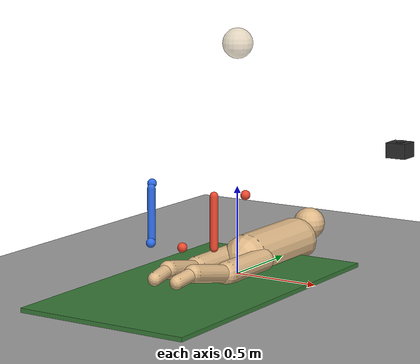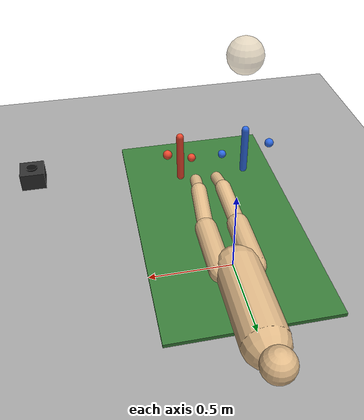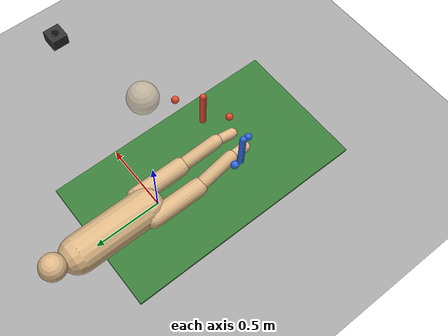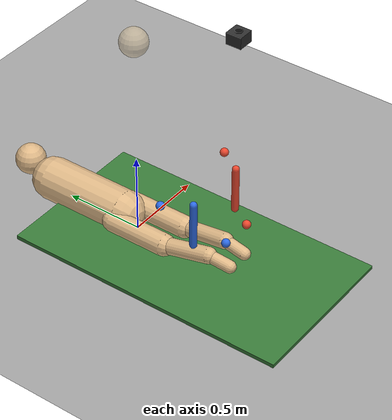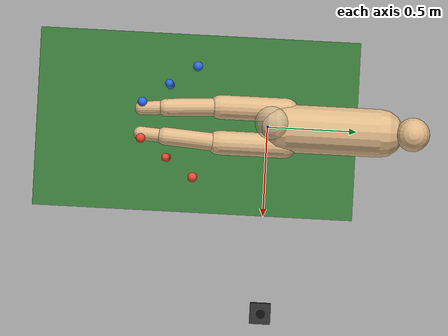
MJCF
<mujoco model="massage_therapy">
  <compiler angle="degree" autolimits="true"/>
  <option gravity="0 0 -9.81" timestep="0.033"/>

  <visual>
    <headlight diffuse="0.6 0.6 0.6" ambient="0.35 0.35 0.35" specular="0 0 0"/>
    <rgba haze="0.12 0.2 0.3 1"/>
    <quality shadowsize="2048"/>
  </visual>

  <asset>
    <texture name="skybox" type="skybox" builtin="gradient"
             rgb1="0.45 0.62 0.82" rgb2="0.08 0.08 0.15" width="512" height="512"/>
    <texture name="floor_tex" type="2d" builtin="checker"
             rgb1="0.72 0.72 0.72" rgb2="0.55 0.55 0.55" width="512" height="512"/>
    <material name="floor_mat"  texture="floor_tex" texrepeat="5 5" reflectance="0.08"/>
    <material name="mat_green"  rgba="0.22 0.48 0.22 1"  reflectance="0.04"/>
    <material name="skin_mat"   rgba="0.87 0.72 0.53 1"  reflectance="0.05"/>
    <material name="right_mat"  rgba="0.92 0.28 0.18 0.9" reflectance="0.1"/>
    <material name="left_mat"   rgba="0.18 0.42 0.90 0.9" reflectance="0.1"/>
    <material name="head_mat"   rgba="0.85 0.76 0.60 0.55" reflectance="0.05"/>
    <material name="camera_mat" rgba="0.18 0.18 0.18 1"  reflectance="0.2"/>
  </asset>

  <worldbody>

    <!-- ── Lighting ──────────────────────────────────────────────────────── -->
    <light name="key"  pos="1.0  0.5 3.0" dir="-0.25 -0.1 -1" diffuse="0.75 0.75 0.75" castshadow="true"/>
    <light name="fill" pos="-1.0 1.0 2.0" dir="0.3  -0.3 -1"  diffuse="0.35 0.35 0.35" castshadow="false"/>
    <light name="back" pos="0.0 -1.5 1.5" dir="0    0.4  -1"  diffuse="0.25 0.25 0.25" castshadow="false"/>

    <!-- ── Floor ─────────────────────────────────────────────────────────── -->
    <geom name="floor" type="plane" size="4 4 0.01" material="floor_mat"
          friction="1 0.005 0.0001" contype="1" conaffinity="1"/>

    <!-- ── Therapy mat ───────────────────────────────────────────────────── -->
    <!--   Long green mat along -Y axis from world origin.
           Adjust pos/size if your patient is positioned differently.       -->
    <geom name="therapy_mat" type="box" pos="0 -0.4 0.012"
          size="0.5 0.9 0.012" material="mat_green"/>

    <!-- ── Patient (lying supine, head toward +Y, feet toward -Y) ──────── -->
    <!--   pos=  world-frame root of patient body.
           Tune pos to place calves where your hand joint data clusters.    -->
    <body name="patient" pos="0 0.25 0.07">
      <geom name="pat_torso"    type="capsule" fromto="0 -0.15 0   0  0.38 0"  size="0.135" material="skin_mat"/>
      <geom name="pat_head"     type="sphere"  pos="0  0.56  0.07"             size="0.095" material="skin_mat"/>
      <geom name="pat_r_thigh"  type="capsule" fromto=" 0.10 -0.15 0   0.10 -0.52  0" size="0.068" material="skin_mat"/>
      <geom name="pat_l_thigh"  type="capsule" fromto="-0.10 -0.15 0  -0.10 -0.52  0" size="0.068" material="skin_mat"/>
      <!--  Calves = therapy target area  -->
      <geom name="pat_r_calf"   type="capsule" fromto=" 0.10 -0.52 0   0.08 -0.82  0.06" size="0.050" material="skin_mat"/>
      <geom name="pat_l_calf"   type="capsule" fromto="-0.10 -0.52 0  -0.08 -0.82  0.06" size="0.050" material="skin_mat"/>
      <geom name="pat_r_foot"   type="capsule" fromto=" 0.08 -0.82 0.06  0.07 -0.96 0.04" size="0.038" material="skin_mat"/>
      <geom name="pat_l_foot"   type="capsule" fromto="-0.08 -0.82 0.06 -0.07 -0.96 0.04" size="0.038" material="skin_mat"/>
    </body>

    <body name="right_wrist" mocap="true" pos="0.1 -0.7 0.3">
      <geom name="right_wrist_geom" type="sphere" size="0.026" material="right_mat"/>
    </body>

    <body name="right_elbow" mocap="true" pos="0.3 -0.4 0.55">
      <geom name="right_elbow_geom" type="sphere" size="0.026" material="right_mat"/>
    </body>

    <!--  Forearm capsule: positioned at wrist-elbow midpoint by playback script.
          size[0]=radius, size[1]=half-length (updated each frame).        -->
    <body name="right_forearm" mocap="true" pos="0.2 -0.55 0.42">
      <geom name="right_forearm_geom" type="capsule" size="0.022 0.14" material="right_mat"/>
    </body>

    <!-- ── Therapist: left arm (blue) ────────────────────────────────── -->

    <body name="left_wrist" mocap="true" pos="-0.1 -0.7 0.3">
      <geom name="left_wrist_geom" type="sphere" size="0.026" material="left_mat"/>
    </body>

    <body name="left_elbow" mocap="true" pos="-0.3 -0.4 0.55">
      <geom name="left_elbow_geom" type="sphere" size="0.026" material="left_mat"/>
    </body>

    <body name="left_forearm" mocap="true" pos="-0.2 -0.55 0.42">
      <geom name="left_forearm_geom" type="capsule" size="0.022 0.14" material="left_mat"/>
    </body>

    <!-- ── Therapist head (D435i camera position) ────────────────────── -->
    <body name="therapist_head" mocap="true" pos="0 0 1.3">
      <geom name="head_geom" type="sphere" size="0.085" material="head_mat"/>
    </body>

    <!-- ── L515 camera (static, placed from T_world_L515.txt) ─────────── -->
    <body name="l515_camera" mocap="true" pos="1 0 0.8">
      <geom name="l515_body_geom" type="box"    size="0.055 0.055 0.04" material="camera_mat"/>
      <geom name="l515_lens_geom" type="cylinder" pos="0 0 0.04" size="0.025 0.008"
            rgba="0.05 0.05 0.05 1"/>
    </body>

  </worldbody>
</mujoco>
